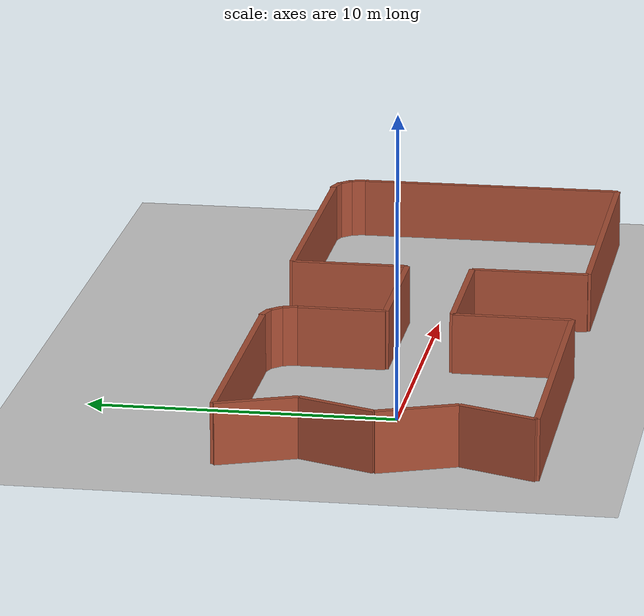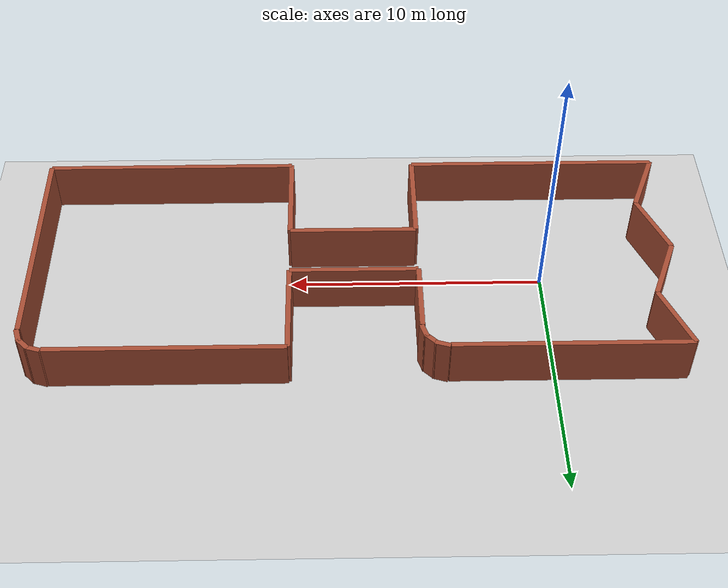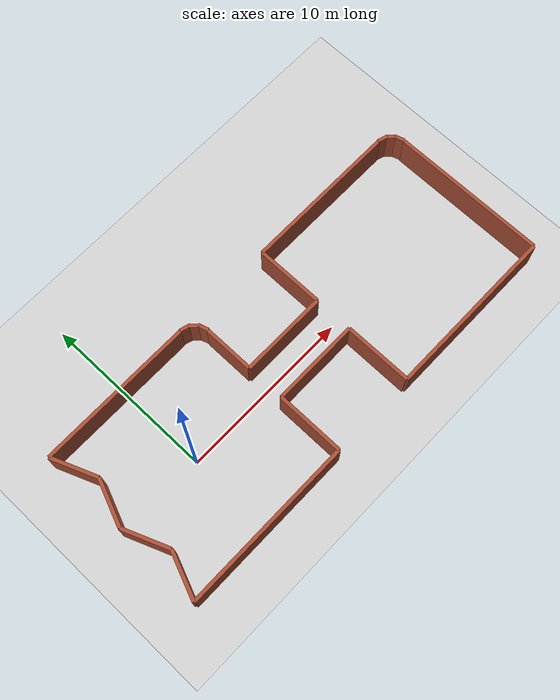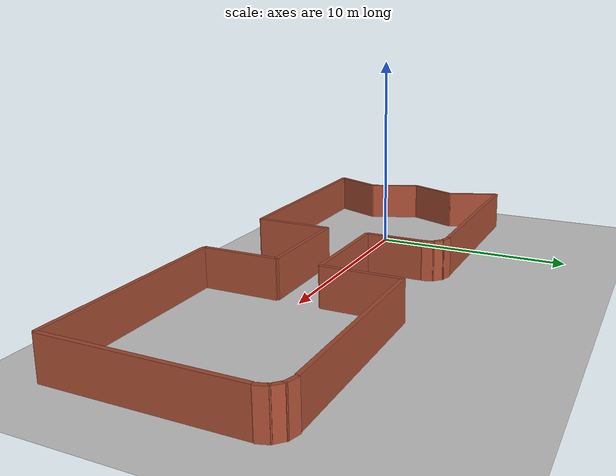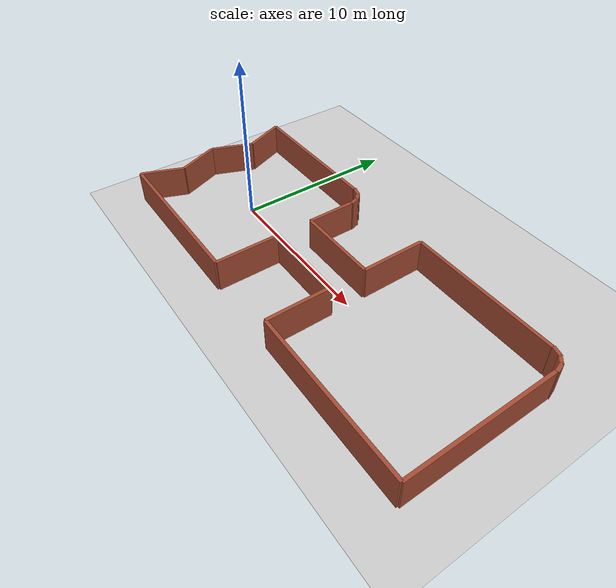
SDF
<?xml version="1.0" ?>
<sdf version="1.6">
  <world name="tesi_final_room">
    <include><uri>model://sun</uri></include>
    <include><uri>model://ground_plane</uri></include>
    <plugin name='ActorPosesPlugin' filename='libActorPosesPlugin.so'/>

    <!--            STANZA 1 (Ovest)                -->
    <model name="r1_wall_south">
      <static>true</static><link name="l"><pose>0 -5 1.0 0 0 0</pose>
      <collision name="c"><geometry><box><size>10 0.2 2.0</size></box></geometry></collision>
      <visual name="v"><geometry><box><size>10 0.2 2.0</size></box></geometry><material><script><uri>file://media/materials/scripts/gazebo.material</uri><name>Gazebo/Bricks</name></script></material></visual></link>
    </model>
    <model name="r1_wall_east_top">
      <static>true</static><link name="l"><pose>5 2.55 1.0 0 0 1.5708</pose>
      <collision name="c"><geometry><box><size>2.9 0.2 2.0</size></box></geometry></collision>
      <visual name="v"><geometry><box><size>2.9 0.2 2.0</size></box></geometry><material><script><uri>file://media/materials/scripts/gazebo.material</uri><name>Gazebo/Bricks</name></script></material></visual></link>
    </model>
    <model name="r1_wall_east_bottom">
      <static>true</static><link name="l"><pose>5 -3.05 1.0 0 0 1.5708</pose>
      <collision name="c"><geometry><box><size>3.9 0.2 2.0</size></box></geometry></collision>
      <visual name="v"><geometry><box><size>3.9 0.2 2.0</size></box></geometry><material><script><uri>file://media/materials/scripts/gazebo.material</uri><name>Gazebo/Bricks</name></script></material></visual></link>
    </model>
    <model name="r1_wall_north">
      <static>true</static><link name="l"><pose>-0.5 5 1.0 0 0 0</pose>
      <collision name="c"><geometry><box><size>9 0.2 2.0</size></box></geometry></collision>
      <visual name="v"><geometry><box><size>9 0.2 2.0</size></box></geometry><material><script><uri>file://media/materials/scripts/gazebo.material</uri><name>Gazebo/Bricks</name></script></material></visual></link>
    </model>

    <!-- Angoli R1 -->
    <model name="r1_c1"><static>true</static><link name="l"><pose>4.3 4.95 1.0 0 0 -0.3</pose><collision name="c"><geometry><box><size>0.6 0.2 2.0</size></box></geometry></collision><visual name="v"><geometry><box><size>0.6 0.2 2.0</size></box></geometry><material><script><uri>file://media/materials/scripts/gazebo.material</uri><name>Gazebo/Bricks</name></script></material></visual></link></model>
    <model name="r1_c2"><static>true</static><link name="l"><pose>4.7 4.7 1.0 0 0 -0.785</pose><collision name="c"><geometry><box><size>0.6 0.2 2.0</size></box></geometry></collision><visual name="v"><geometry><box><size>0.6 0.2 2.0</size></box></geometry><material><script><uri>file://media/materials/scripts/gazebo.material</uri><name>Gazebo/Bricks</name></script></material></visual></link></model>
    <model name="r1_c3"><static>true</static><link name="l"><pose>4.95 4.3 1.0 0 0 -1.27</pose><collision name="c"><geometry><box><size>0.6 0.2 2.0</size></box></geometry></collision><visual name="v"><geometry><box><size>0.6 0.2 2.0</size></box></geometry><material><script><uri>file://media/materials/scripts/gazebo.material</uri><name>Gazebo/Bricks</name></script></material></visual></link></model>

    <!-- Zig-Zag R1 -->
    <model name="r1_z1"><static>true</static><link name="l"><pose>-4.5 3.75 1.0 0 0 -1.19</pose><collision name="c"><geometry><box><size>2.7 0.2 2.0</size></box></geometry></collision><visual name="v"><geometry><box><size>2.7 0.2 2.0</size></box></geometry><material><script><uri>file://media/materials/scripts/gazebo.material</uri><name>Gazebo/Bricks</name></script></material></visual></link></model>
    <model name="r1_z2"><static>true</static><link name="l"><pose>-4.5 1.25 1.0 0 0 1.19</pose><collision name="c"><geometry><box><size>2.7 0.2 2.0</size></box></geometry></collision><visual name="v"><geometry><box><size>2.7 0.2 2.0</size></box></geometry><material><script><uri>file://media/materials/scripts/gazebo.material</uri><name>Gazebo/Bricks</name></script></material></visual></link></model>
    <model name="r1_z3"><static>true</static><link name="l"><pose>-4.5 -1.25 1.0 0 0 -1.19</pose><collision name="c"><geometry><box><size>2.7 0.2 2.0</size></box></geometry></collision><visual name="v"><geometry><box><size>2.7 0.2 2.0</size></box></geometry><material><script><uri>file://media/materials/scripts/gazebo.material</uri><name>Gazebo/Bricks</name></script></material></visual></link></model>
    <model name="r1_z4"><static>true</static><link name="l"><pose>-4.5 -3.75 1.0 0 0 1.19</pose><collision name="c"><geometry><box><size>2.7 0.2 2.0</size></box></geometry></collision><visual name="v"><geometry><box><size>2.7 0.2 2.0</size></box></geometry><material><script><uri>file://media/materials/scripts/gazebo.material</uri><name>Gazebo/Bricks</name></script></material></visual></link></model>

    <!--            CORRIDOIO                       -->
    <model name="c_north">
      <static>true</static><link name="l"><pose>7.5 1.1 1.0 0 0 0</pose>
      <collision name="c"><geometry><box><size>5 0.2 2.0</size></box></geometry></collision>
      <visual name="v"><geometry><box><size>5 0.2 2.0</size></box></geometry><material><script><uri>file://media/materials/scripts/gazebo.material</uri><name>Gazebo/Bricks</name></script></material></visual></link>
    </model>
    <model name="c_south">
      <static>true</static><link name="l"><pose>7.5 -1.1 1.0 0 0 0</pose>
      <collision name="c"><geometry><box><size>5 0.2 2.0</size></box></geometry></collision>
      <visual name="v"><geometry><box><size>5 0.2 2.0</size></box></geometry><material><script><uri>file://media/materials/scripts/gazebo.material</uri><name>Gazebo/Bricks</name></script></material></visual></link>
    </model>

    <!--            STANZA 2 (Est)                  -->
    <model name="r2_wall_south">
      <static>true</static><link name="l"><pose>15 -5 1.0 0 0 0</pose>
      <collision name="c"><geometry><box><size>10 0.2 2.0</size></box></geometry></collision>
      <visual name="v"><geometry><box><size>10 0.2 2.0</size></box></geometry><material><script><uri>file://media/materials/scripts/gazebo.material</uri><name>Gazebo/Bricks</name></script></material></visual></link>
    </model>
    <model name="r2_wall_north">
      <static>true</static><link name="l"><pose>14.5 5 1.0 0 0 0</pose>
      <collision name="c"><geometry><box><size>9 0.2 2.0</size></box></geometry></collision>
      <visual name="v"><geometry><box><size>9 0.2 2.0</size></box></geometry><material><script><uri>file://media/materials/scripts/gazebo.material</uri><name>Gazebo/Bricks</name></script></material></visual></link>
    </model>
    <model name="r2_wall_east">
      <static>true</static><link name="l"><pose>20 -0.5 1.0 0 0 1.5708</pose>
      <collision name="c"><geometry><box><size>9 0.2 2.0</size></box></geometry></collision>
      <visual name="v"><geometry><box><size>9 0.2 2.0</size></box></geometry><material><script><uri>file://media/materials/scripts/gazebo.material</uri><name>Gazebo/Bricks</name></script></material></visual></link>
    </model>
    <model name="r2_wall_west_top">
      <static>true</static><link name="l"><pose>10 3.05 1.0 0 0 1.5708</pose>
      <collision name="c"><geometry><box><size>3.9 0.2 2.0</size></box></geometry></collision>
      <visual name="v"><geometry><box><size>3.9 0.2 2.0</size></box></geometry><material><script><uri>file://media/materials/scripts/gazebo.material</uri><name>Gazebo/Bricks</name></script></material></visual></link>
    </model>
    <model name="r2_wall_west_bottom">
      <static>true</static><link name="l"><pose>10 -3.05 1.0 0 0 1.5708</pose>
      <collision name="c"><geometry><box><size>3.9 0.2 2.0</size></box></geometry></collision>
      <visual name="v"><geometry><box><size>3.9 0.2 2.0</size></box></geometry><material><script><uri>file://media/materials/scripts/gazebo.material</uri><name>Gazebo/Bricks</name></script></material></visual></link>
    </model>

    <!-- Angoli R2 (NE) -->
    <model name="r2_c1"><static>true</static><link name="l"><pose>19.3 4.95 1.0 0 0 -0.3</pose><collision name="c"><geometry><box><size>0.6 0.2 2.0</size></box></geometry></collision><visual name="v"><geometry><box><size>0.6 0.2 2.0</size></box></geometry><material><script><uri>file://media/materials/scripts/gazebo.material</uri><name>Gazebo/Bricks</name></script></material></visual></link></model>
    <model name="r2_c2"><static>true</static><link name="l"><pose>19.7 4.7 1.0 0 0 -0.785</pose><collision name="c"><geometry><box><size>0.6 0.2 2.0</size></box></geometry></collision><visual name="v"><geometry><box><size>0.6 0.2 2.0</size></box></geometry><material><script><uri>file://media/materials/scripts/gazebo.material</uri><name>Gazebo/Bricks</name></script></material></visual></link></model>
    <model name="r2_c3"><static>true</static><link name="l"><pose>19.95 4.3 1.0 0 0 -1.27</pose><collision name="c"><geometry><box><size>0.6 0.2 2.0</size></box></geometry></collision><visual name="v"><geometry><box><size>0.6 0.2 2.0</size></box></geometry><material><script><uri>file://media/materials/scripts/gazebo.material</uri><name>Gazebo/Bricks</name></script></material></visual></link></model>

    <physics type='ode'>
      <max_step_size>0.001</max_step_size>
      <real_time_factor>1</real_time_factor>
      <real_time_update_rate>1000</real_time_update_rate>
    </physics>
  </world>
</sdf>
